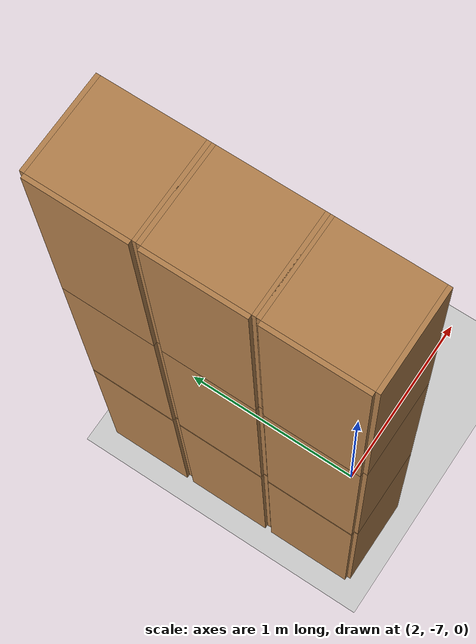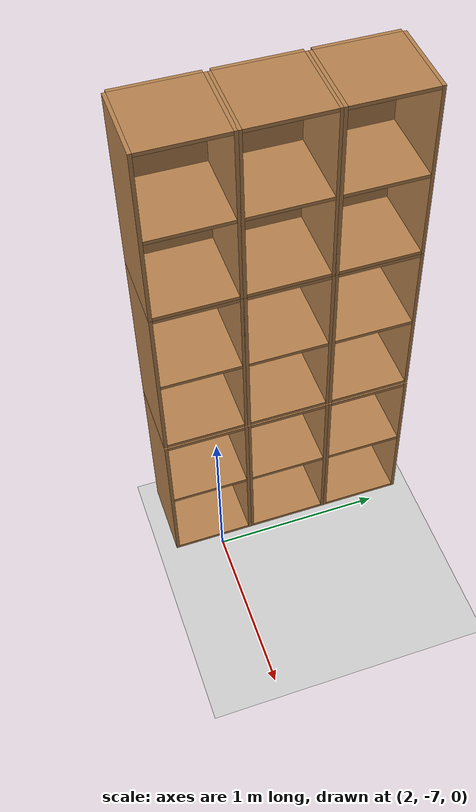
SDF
<sdf version="1.6">
 <world name="default">
  <model name="ground_plane">
   <static>1</static>
   <link name="link">
    <collision name="collision">
     <geometry><plane><normal>0 0 1</normal><size>100 100</size></plane></geometry>
     <surface>
      <contact><collide_bitmask>65535</collide_bitmask></contact>
      <friction><ode><mu>100</mu><mu2>50</mu2></ode></friction>
     </surface>
    </collision>
    <visual name="visual">
     <cast_shadows>0</cast_shadows>
     <geometry><plane><normal>0 0 1</normal><size>100 100</size></plane></geometry>
     <material>
      <script><uri>file://media/materials/scripts/gazebo.material</uri><name>Gazebo/Grey</name></script>
     </material>
    </visual>
   </link>
  </model>
  <model name="Locker18_clone_4_clone_2_clone_1_clone_clone_clone_3_clone_1">
   <model name="Locker18">
    <model name="Locker3">
     <model name="cabinet">
      <static>1</static>
      <link name="cabinet_bottom_plate">
       <inertial>
        <pose>0 0 -1 0 -0 0</pose>
        <inertia><ixx>2.05</ixx><ixy>0</ixy><ixz>0</ixz><iyy>2.05</iyy><iyz>0</iyz><izz>2.05</izz></inertia>
        <mass>25</mass>
       </inertial>
       <collision name="cabinet_bottom_plate_geom">
        <pose>0 0 0.01 0 -0 0</pose>
        <geometry><box><size>0.45 0.45 0.02</size></box></geometry>
       </collision>
       <visual name="cabinet_bottom_plate_geom_visual">
        <pose>0 0 0.01 0 -0 0</pose>
        <geometry><box><size>0.45 0.45 0.02</size></box></geometry>
        <material>
         <script><uri>file://media/materials/scripts/gazebo.material</uri><name>Gazebo/Wood</name></script>
        </material>
       </visual>
       <collision name="cabinet_bottom_plate_geom_cabinet_back_plate">
        <pose>0.235 0 0.51 0 -0 0</pose>
        <geometry><box><size>0.02 0.45 1.02</size></box></geometry>
       </collision>
       <visual name="cabinet_bottom_plate_geom_cabinet_back_plate_visual">
        <pose>0.235 0 0.51 0 -0 0</pose>
        <geometry><box><size>0.02 0.45 1.02</size></box></geometry>
        <material>
         <script><uri>file://media/materials/scripts/gazebo.material</uri><name>Gazebo/Wood</name></script>
        </material>
       </visual>
       <collision name="cabinet_bottom_plate_geom_cabinet_left_plate">
        <pose>0 0.235 0.51 0 -0 0</pose>
        <geometry><box><size>0.45 0.02 1.02</size></box></geometry>
       </collision>
       <visual name="cabinet_bottom_plate_geom_cabinet_left_plate_visual">
        <pose>0 0.235 0.51 0 -0 0</pose>
        <geometry><box><size>0.45 0.02 1.02</size></box></geometry>
        <material>
         <script><uri>file://media/materials/scripts/gazebo.material</uri><name>Gazebo/Wood</name></script>
        </material>
       </visual>
       <collision name="cabinet_bottom_plate_geom_cabinet_middle_plate">
        <pose>0 0 0.51 0 -0 0</pose>
        <geometry><box><size>0.45 0.45 0.02</size></box></geometry>
       </collision>
       <visual name="cabinet_bottom_plate_geom_cabinet_middle_plate_visual">
        <pose>0 0 0.51 0 -0 0</pose>
        <geometry><box><size>0.45 0.45 0.02</size></box></geometry>
        <material>
         <script><uri>file://media/materials/scripts/gazebo.material</uri><name>Gazebo/Wood</name></script>
        </material>
       </visual>
       <collision name="cabinet_bottom_plate_geom_cabinet_right_plate">
        <pose>0 -0.235 0.51 0 -0 0</pose>
        <geometry><box><size>0.45 0.02 1.02</size></box></geometry>
       </collision>
       <visual name="cabinet_bottom_plate_geom_cabinet_right_plate_visual">
        <pose>0 -0.235 0.51 0 -0 0</pose>
        <geometry><box><size>0.45 0.02 1.02</size></box></geometry>
        <material>
         <script><uri>file://media/materials/scripts/gazebo.material</uri><name>Gazebo/Wood</name></script>
        </material>
       </visual>
       <collision name="cabinet_bottom_plate_geom_cabinet_top_plate">
        <pose>0 0 1.01 0 -0 0</pose>
        <geometry><box><size>0.45 0.45 0.02</size></box></geometry>
       </collision>
       <visual name="cabinet_bottom_plate_geom_cabinet_top_plate_visual">
        <pose>0 0 1.01 0 -0 0</pose>
        <geometry><box><size>0.45 0.45 0.02</size></box></geometry>
        <material>
         <script><uri>file://media/materials/scripts/gazebo.material</uri><name>Gazebo/Wood</name></script>
        </material>
       </visual>
      </link>
      <pose>-0.676968 1.45758 0 0 -0 0</pose>
     </model>
     <model name="cabinet_clone">
      <static>1</static>
      <link name="cabinet_bottom_plate">
       <inertial>
        <pose>0 0 -1 0 -0 0</pose>
        <inertia><ixx>2.05</ixx><ixy>0</ixy><ixz>0</ixz><iyy>2.05</iyy><iyz>0</iyz><izz>2.05</izz></inertia>
        <mass>25</mass>
       </inertial>
       <collision name="cabinet_bottom_plate_geom">
        <pose>0 0 0.01 0 -0 0</pose>
        <geometry><box><size>0.45 0.45 0.02</size></box></geometry>
       </collision>
       <visual name="cabinet_bottom_plate_geom_visual">
        <pose>0 0 0.01 0 -0 0</pose>
        <geometry><box><size>0.45 0.45 0.02</size></box></geometry>
        <material>
         <script><uri>file://media/materials/scripts/gazebo.material</uri><name>Gazebo/Wood</name></script>
        </material>
       </visual>
       <collision name="cabinet_bottom_plate_geom_cabinet_back_plate">
        <pose>0.235 0 0.51 0 -0 0</pose>
        <geometry><box><size>0.02 0.45 1.02</size></box></geometry>
       </collision>
       <visual name="cabinet_bottom_plate_geom_cabinet_back_plate_visual">
        <pose>0.235 0 0.51 0 -0 0</pose>
        <geometry><box><size>0.02 0.45 1.02</size></box></geometry>
        <material>
         <script><uri>file://media/materials/scripts/gazebo.material</uri><name>Gazebo/Wood</name></script>
        </material>
       </visual>
       <collision name="cabinet_bottom_plate_geom_cabinet_left_plate">
        <pose>0 0.235 0.51 0 -0 0</pose>
        <geometry><box><size>0.45 0.02 1.02</size></box></geometry>
       </collision>
       <visual name="cabinet_bottom_plate_geom_cabinet_left_plate_visual">
        <pose>0 0.235 0.51 0 -0 0</pose>
        <geometry><box><size>0.45 0.02 1.02</size></box></geometry>
        <material>
         <script><uri>file://media/materials/scripts/gazebo.material</uri><name>Gazebo/Wood</name></script>
        </material>
       </visual>
       <collision name="cabinet_bottom_plate_geom_cabinet_middle_plate">
        <pose>0 0 0.51 0 -0 0</pose>
        <geometry><box><size>0.45 0.45 0.02</size></box></geometry>
       </collision>
       <visual name="cabinet_bottom_plate_geom_cabinet_middle_plate_visual">
        <pose>0 0 0.51 0 -0 0</pose>
        <geometry><box><size>0.45 0.45 0.02</size></box></geometry>
        <material>
         <script><uri>file://media/materials/scripts/gazebo.material</uri><name>Gazebo/Wood</name></script>
        </material>
       </visual>
       <collision name="cabinet_bottom_plate_geom_cabinet_right_plate">
        <pose>0 -0.235 0.51 0 -0 0</pose>
        <geometry><box><size>0.45 0.02 1.02</size></box></geometry>
       </collision>
       <visual name="cabinet_bottom_plate_geom_cabinet_right_plate_visual">
        <pose>0 -0.235 0.51 0 -0 0</pose>
        <geometry><box><size>0.45 0.02 1.02</size></box></geometry>
        <material>
         <script><uri>file://media/materials/scripts/gazebo.material</uri><name>Gazebo/Wood</name></script>
        </material>
       </visual>
       <collision name="cabinet_bottom_plate_geom_cabinet_top_plate">
        <pose>0 0 1.01 0 -0 0</pose>
        <geometry><box><size>0.45 0.45 0.02</size></box></geometry>
       </collision>
       <visual name="cabinet_bottom_plate_geom_cabinet_top_plate_visual">
        <pose>0 0 1.01 0 -0 0</pose>
        <geometry><box><size>0.45 0.45 0.02</size></box></geometry>
        <material>
         <script><uri>file://media/materials/scripts/gazebo.material</uri><name>Gazebo/Wood</name></script>
        </material>
       </visual>
      </link>
      <pose>-0.676968 0.970971 0 0 -0 0</pose>
     </model>
     <model name="cabinet_clone_0">
      <static>1</static>
      <link name="cabinet_bottom_plate">
       <inertial>
        <pose>0 0 -1 0 -0 0</pose>
        <inertia><ixx>2.05</ixx><ixy>0</ixy><ixz>0</ixz><iyy>2.05</iyy><iyz>0</iyz><izz>2.05</izz></inertia>
        <mass>25</mass>
       </inertial>
       <collision name="cabinet_bottom_plate_geom">
        <pose>0 0 0.01 0 -0 0</pose>
        <geometry><box><size>0.45 0.45 0.02</size></box></geometry>
       </collision>
       <visual name="cabinet_bottom_plate_geom_visual">
        <pose>0 0 0.01 0 -0 0</pose>
        <geometry><box><size>0.45 0.45 0.02</size></box></geometry>
        <material>
         <script><uri>file://media/materials/scripts/gazebo.material</uri><name>Gazebo/Wood</name></script>
        </material>
       </visual>
       <collision name="cabinet_bottom_plate_geom_cabinet_back_plate">
        <pose>0.235 0 0.51 0 -0 0</pose>
        <geometry><box><size>0.02 0.45 1.02</size></box></geometry>
       </collision>
       <visual name="cabinet_bottom_plate_geom_cabinet_back_plate_visual">
        <pose>0.235 0 0.51 0 -0 0</pose>
        <geometry><box><size>0.02 0.45 1.02</size></box></geometry>
        <material>
         <script><uri>file://media/materials/scripts/gazebo.material</uri><name>Gazebo/Wood</name></script>
        </material>
       </visual>
       <collision name="cabinet_bottom_plate_geom_cabinet_left_plate">
        <pose>0 0.235 0.51 0 -0 0</pose>
        <geometry><box><size>0.45 0.02 1.02</size></box></geometry>
       </collision>
       <visual name="cabinet_bottom_plate_geom_cabinet_left_plate_visual">
        <pose>0 0.235 0.51 0 -0 0</pose>
        <geometry><box><size>0.45 0.02 1.02</size></box></geometry>
        <material>
         <script><uri>file://media/materials/scripts/gazebo.material</uri><name>Gazebo/Wood</name></script>
        </material>
       </visual>
       <collision name="cabinet_bottom_plate_geom_cabinet_middle_plate">
        <pose>0 0 0.51 0 -0 0</pose>
        <geometry><box><size>0.45 0.45 0.02</size></box></geometry>
       </collision>
       <visual name="cabinet_bottom_plate_geom_cabinet_middle_plate_visual">
        <pose>0 0 0.51 0 -0 0</pose>
        <geometry><box><size>0.45 0.45 0.02</size></box></geometry>
        <material>
         <script><uri>file://media/materials/scripts/gazebo.material</uri><name>Gazebo/Wood</name></script>
        </material>
       </visual>
       <collision name="cabinet_bottom_plate_geom_cabinet_right_plate">
        <pose>0 -0.235 0.51 0 -0 0</pose>
        <geometry><box><size>0.45 0.02 1.02</size></box></geometry>
       </collision>
       <visual name="cabinet_bottom_plate_geom_cabinet_right_plate_visual">
        <pose>0 -0.235 0.51 0 -0 0</pose>
        <geometry><box><size>0.45 0.02 1.02</size></box></geometry>
        <material>
         <script><uri>file://media/materials/scripts/gazebo.material</uri><name>Gazebo/Wood</name></script>
        </material>
       </visual>
       <collision name="cabinet_bottom_plate_geom_cabinet_top_plate">
        <pose>0 0 1.01 0 -0 0</pose>
        <geometry><box><size>0.45 0.45 0.02</size></box></geometry>
       </collision>
       <visual name="cabinet_bottom_plate_geom_cabinet_top_plate_visual">
        <pose>0 0 1.01 0 -0 0</pose>
        <geometry><box><size>0.45 0.45 0.02</size></box></geometry>
        <material>
         <script><uri>file://media/materials/scripts/gazebo.material</uri><name>Gazebo/Wood</name></script>
        </material>
       </visual>
      </link>
      <pose>-0.676968 0.48391 0 0 -0 0</pose>
     </model>
     <static>0</static>
     <pose>0 3e-06 -1.02763 0 -0 0</pose>
    </model>
    <model name="Locker3_clone">
     <model name="cabinet">
      <static>1</static>
      <link name="cabinet_bottom_plate">
       <inertial>
        <pose>0 0 -1 0 -0 0</pose>
        <inertia><ixx>2.05</ixx><ixy>0</ixy><ixz>0</ixz><iyy>2.05</iyy><iyz>0</iyz><izz>2.05</izz></inertia>
        <mass>25</mass>
       </inertial>
       <collision name="cabinet_bottom_plate_geom">
        <pose>0 0 0.01 0 -0 0</pose>
        <geometry><box><size>0.45 0.45 0.02</size></box></geometry>
       </collision>
       <visual name="cabinet_bottom_plate_geom_visual">
        <pose>0 0 0.01 0 -0 0</pose>
        <geometry><box><size>0.45 0.45 0.02</size></box></geometry>
        <material>
         <script><uri>file://media/materials/scripts/gazebo.material</uri><name>Gazebo/Wood</name></script>
        </material>
       </visual>
       <collision name="cabinet_bottom_plate_geom_cabinet_back_plate">
        <pose>0.235 0 0.51 0 -0 0</pose>
        <geometry><box><size>0.02 0.45 1.02</size></box></geometry>
       </collision>
       <visual name="cabinet_bottom_plate_geom_cabinet_back_plate_visual">
        <pose>0.235 0 0.51 0 -0 0</pose>
        <geometry><box><size>0.02 0.45 1.02</size></box></geometry>
        <material>
         <script><uri>file://media/materials/scripts/gazebo.material</uri><name>Gazebo/Wood</name></script>
        </material>
       </visual>
       <collision name="cabinet_bottom_plate_geom_cabinet_left_plate">
        <pose>0 0.235 0.51 0 -0 0</pose>
        <geometry><box><size>0.45 0.02 1.02</size></box></geometry>
       </collision>
       <visual name="cabinet_bottom_plate_geom_cabinet_left_plate_visual">
        <pose>0 0.235 0.51 0 -0 0</pose>
        <geometry><box><size>0.45 0.02 1.02</size></box></geometry>
        <material>
         <script><uri>file://media/materials/scripts/gazebo.material</uri><name>Gazebo/Wood</name></script>
        </material>
       </visual>
       <collision name="cabinet_bottom_plate_geom_cabinet_middle_plate">
        <pose>0 0 0.51 0 -0 0</pose>
        <geometry><box><size>0.45 0.45 0.02</size></box></geometry>
       </collision>
       <visual name="cabinet_bottom_plate_geom_cabinet_middle_plate_visual">
        <pose>0 0 0.51 0 -0 0</pose>
        <geometry><box><size>0.45 0.45 0.02</size></box></geometry>
        <material>
         <script><uri>file://media/materials/scripts/gazebo.material</uri><name>Gazebo/Wood</name></script>
        </material>
       </visual>
       <collision name="cabinet_bottom_plate_geom_cabinet_right_plate">
        <pose>0 -0.235 0.51 0 -0 0</pose>
        <geometry><box><size>0.45 0.02 1.02</size></box></geometry>
       </collision>
       <visual name="cabinet_bottom_plate_geom_cabinet_right_plate_visual">
        <pose>0 -0.235 0.51 0 -0 0</pose>
        <geometry><box><size>0.45 0.02 1.02</size></box></geometry>
        <material>
         <script><uri>file://media/materials/scripts/gazebo.material</uri><name>Gazebo/Wood</name></script>
        </material>
       </visual>
       <collision name="cabinet_bottom_plate_geom_cabinet_top_plate">
        <pose>0 0 1.01 0 -0 0</pose>
        <geometry><box><size>0.45 0.45 0.02</size></box></geometry>
       </collision>
       <visual name="cabinet_bottom_plate_geom_cabinet_top_plate_visual">
        <pose>0 0 1.01 0 -0 0</pose>
        <geometry><box><size>0.45 0.45 0.02</size></box></geometry>
        <material>
         <script><uri>file://media/materials/scripts/gazebo.material</uri><name>Gazebo/Wood</name></script>
        </material>
       </visual>
      </link>
      <pose>-0.676968 1.45758 0 0 -0 0</pose>
     </model>
     <model name="cabinet_clone">
      <static>1</static>
      <link name="cabinet_bottom_plate">
       <inertial>
        <pose>0 0 -1 0 -0 0</pose>
        <inertia><ixx>2.05</ixx><ixy>0</ixy><ixz>0</ixz><iyy>2.05</iyy><iyz>0</iyz><izz>2.05</izz></inertia>
        <mass>25</mass>
       </inertial>
       <collision name="cabinet_bottom_plate_geom">
        <pose>0 0 0.01 0 -0 0</pose>
        <geometry><box><size>0.45 0.45 0.02</size></box></geometry>
       </collision>
       <visual name="cabinet_bottom_plate_geom_visual">
        <pose>0 0 0.01 0 -0 0</pose>
        <geometry><box><size>0.45 0.45 0.02</size></box></geometry>
        <material>
         <script><uri>file://media/materials/scripts/gazebo.material</uri><name>Gazebo/Wood</name></script>
        </material>
       </visual>
       <collision name="cabinet_bottom_plate_geom_cabinet_back_plate">
        <pose>0.235 0 0.51 0 -0 0</pose>
        <geometry><box><size>0.02 0.45 1.02</size></box></geometry>
       </collision>
       <visual name="cabinet_bottom_plate_geom_cabinet_back_plate_visual">
        <pose>0.235 0 0.51 0 -0 0</pose>
        <geometry><box><size>0.02 0.45 1.02</size></box></geometry>
        <material>
         <script><uri>file://media/materials/scripts/gazebo.material</uri><name>Gazebo/Wood</name></script>
        </material>
       </visual>
       <collision name="cabinet_bottom_plate_geom_cabinet_left_plate">
        <pose>0 0.235 0.51 0 -0 0</pose>
        <geometry><box><size>0.45 0.02 1.02</size></box></geometry>
       </collision>
       <visual name="cabinet_bottom_plate_geom_cabinet_left_plate_visual">
        <pose>0 0.235 0.51 0 -0 0</pose>
        <geometry><box><size>0.45 0.02 1.02</size></box></geometry>
        <material>
         <script><uri>file://media/materials/scripts/gazebo.material</uri><name>Gazebo/Wood</name></script>
        </material>
       </visual>
       <collision name="cabinet_bottom_plate_geom_cabinet_middle_plate">
        <pose>0 0 0.51 0 -0 0</pose>
        <geometry><box><size>0.45 0.45 0.02</size></box></geometry>
       </collision>
       <visual name="cabinet_bottom_plate_geom_cabinet_middle_plate_visual">
        <pose>0 0 0.51 0 -0 0</pose>
        <geometry><box><size>0.45 0.45 0.02</size></box></geometry>
        <material>
         <script><uri>file://media/materials/scripts/gazebo.material</uri><name>Gazebo/Wood</name></script>
        </material>
       </visual>
       <collision name="cabinet_bottom_plate_geom_cabinet_right_plate">
        <pose>0 -0.235 0.51 0 -0 0</pose>
        <geometry><box><size>0.45 0.02 1.02</size></box></geometry>
       </collision>
       <visual name="cabinet_bottom_plate_geom_cabinet_right_plate_visual">
        <pose>0 -0.235 0.51 0 -0 0</pose>
        <geometry><box><size>0.45 0.02 1.02</size></box></geometry>
        <material>
         <script><uri>file://media/materials/scripts/gazebo.material</uri><name>Gazebo/Wood</name></script>
        </material>
       </visual>
       <collision name="cabinet_bottom_plate_geom_cabinet_top_plate">
        <pose>0 0 1.01 0 -0 0</pose>
        <geometry><box><size>0.45 0.45 0.02</size></box></geometry>
       </collision>
       <visual name="cabinet_bottom_plate_geom_cabinet_top_plate_visual">
        <pose>0 0 1.01 0 -0 0</pose>
        <geometry><box><size>0.45 0.45 0.02</size></box></geometry>
        <material>
         <script><uri>file://media/materials/scripts/gazebo.material</uri><name>Gazebo/Wood</name></script>
        </material>
       </visual>
      </link>
      <pose>-0.676968 0.970971 0 0 -0 0</pose>
     </model>
     <model name="cabinet_clone_0">
      <static>1</static>
      <link name="cabinet_bottom_plate">
       <inertial>
        <pose>0 0 -1 0 -0 0</pose>
        <inertia><ixx>2.05</ixx><ixy>0</ixy><ixz>0</ixz><iyy>2.05</iyy><iyz>0</iyz><izz>2.05</izz></inertia>
        <mass>25</mass>
       </inertial>
       <collision name="cabinet_bottom_plate_geom">
        <pose>0 0 0.01 0 -0 0</pose>
        <geometry><box><size>0.45 0.45 0.02</size></box></geometry>
       </collision>
       <visual name="cabinet_bottom_plate_geom_visual">
        <pose>0 0 0.01 0 -0 0</pose>
        <geometry><box><size>0.45 0.45 0.02</size></box></geometry>
        <material>
         <script><uri>file://media/materials/scripts/gazebo.material</uri><name>Gazebo/Wood</name></script>
        </material>
       </visual>
       <collision name="cabinet_bottom_plate_geom_cabinet_back_plate">
        <pose>0.235 0 0.51 0 -0 0</pose>
        <geometry><box><size>0.02 0.45 1.02</size></box></geometry>
       </collision>
       <visual name="cabinet_bottom_plate_geom_cabinet_back_plate_visual">
        <pose>0.235 0 0.51 0 -0 0</pose>
        <geometry><box><size>0.02 0.45 1.02</size></box></geometry>
        <material>
         <script><uri>file://media/materials/scripts/gazebo.material</uri><name>Gazebo/Wood</name></script>
        </material>
       </visual>
       <collision name="cabinet_bottom_plate_geom_cabinet_left_plate">
        <pose>0 0.235 0.51 0 -0 0</pose>
        <geometry><box><size>0.45 0.02 1.02</size></box></geometry>
       </collision>
       <visual name="cabinet_bottom_plate_geom_cabinet_left_plate_visual">
        <pose>0 0.235 0.51 0 -0 0</pose>
        <geometry><box><size>0.45 0.02 1.02</size></box></geometry>
        <material>
         <script><uri>file://media/materials/scripts/gazebo.material</uri><name>Gazebo/Wood</name></script>
        </material>
       </visual>
       <collision name="cabinet_bottom_plate_geom_cabinet_middle_plate">
        <pose>0 0 0.51 0 -0 0</pose>
        <geometry><box><size>0.45 0.45 0.02</size></box></geometry>
       </collision>
       <visual name="cabinet_bottom_plate_geom_cabinet_middle_plate_visual">
        <pose>0 0 0.51 0 -0 0</pose>
        <geometry><box><size>0.45 0.45 0.02</size></box></geometry>
        <material>
         <script><uri>file://media/materials/scripts/gazebo.material</uri><name>Gazebo/Wood</name></script>
        </material>
       </visual>
       <collision name="cabinet_bottom_plate_geom_cabinet_right_plate">
        <pose>0 -0.235 0.51 0 -0 0</pose>
        <geometry><box><size>0.45 0.02 1.02</size></box></geometry>
       </collision>
       <visual name="cabinet_bottom_plate_geom_cabinet_right_plate_visual">
        <pose>0 -0.235 0.51 0 -0 0</pose>
        <geometry><box><size>0.45 0.02 1.02</size></box></geometry>
        <material>
         <script><uri>file://media/materials/scripts/gazebo.material</uri><name>Gazebo/Wood</name></script>
        </material>
       </visual>
       <collision name="cabinet_bottom_plate_geom_cabinet_top_plate">
        <pose>0 0 1.01 0 -0 0</pose>
        <geometry><box><size>0.45 0.45 0.02</size></box></geometry>
       </collision>
       <visual name="cabinet_bottom_plate_geom_cabinet_top_plate_visual">
        <pose>0 0 1.01 0 -0 0</pose>
        <geometry><box><size>0.45 0.45 0.02</size></box></geometry>
        <material>
         <script><uri>file://media/materials/scripts/gazebo.material</uri><name>Gazebo/Wood</name></script>
        </material>
       </visual>
      </link>
      <pose>-0.676968 0.48391 0 0 -0 0</pose>
     </model>
     <static>0</static>
     <pose>0 3e-06 0.003717 0 -0 0</pose>
    </model>
    <model name="Locker3_clone_clone">
     <model name="cabinet">
      <static>1</static>
      <link name="cabinet_bottom_plate">
       <inertial>
        <pose>0 0 -1 0 -0 0</pose>
        <inertia><ixx>2.05</ixx><ixy>0</ixy><ixz>0</ixz><iyy>2.05</iyy><iyz>0</iyz><izz>2.05</izz></inertia>
        <mass>25</mass>
       </inertial>
       <collision name="cabinet_bottom_plate_geom">
        <pose>0 0 0.01 0 -0 0</pose>
        <geometry><box><size>0.45 0.45 0.02</size></box></geometry>
       </collision>
       <visual name="cabinet_bottom_plate_geom_visual">
        <pose>0 0 0.01 0 -0 0</pose>
        <geometry><box><size>0.45 0.45 0.02</size></box></geometry>
        <material>
         <script><uri>file://media/materials/scripts/gazebo.material</uri><name>Gazebo/Wood</name></script>
        </material>
       </visual>
       <collision name="cabinet_bottom_plate_geom_cabinet_back_plate">
        <pose>0.235 0 0.51 0 -0 0</pose>
        <geometry><box><size>0.02 0.45 1.02</size></box></geometry>
       </collision>
       <visual name="cabinet_bottom_plate_geom_cabinet_back_plate_visual">
        <pose>0.235 0 0.51 0 -0 0</pose>
        <geometry><box><size>0.02 0.45 1.02</size></box></geometry>
        <material>
         <script><uri>file://media/materials/scripts/gazebo.material</uri><name>Gazebo/Wood</name></script>
        </material>
       </visual>
       <collision name="cabinet_bottom_plate_geom_cabinet_left_plate">
        <pose>0 0.235 0.51 0 -0 0</pose>
        <geometry><box><size>0.45 0.02 1.02</size></box></geometry>
       </collision>
       <visual name="cabinet_bottom_plate_geom_cabinet_left_plate_visual">
        <pose>0 0.235 0.51 0 -0 0</pose>
        <geometry><box><size>0.45 0.02 1.02</size></box></geometry>
        <material>
         <script><uri>file://media/materials/scripts/gazebo.material</uri><name>Gazebo/Wood</name></script>
        </material>
       </visual>
       <collision name="cabinet_bottom_plate_geom_cabinet_middle_plate">
        <pose>0 0 0.51 0 -0 0</pose>
        <geometry><box><size>0.45 0.45 0.02</size></box></geometry>
       </collision>
       <visual name="cabinet_bottom_plate_geom_cabinet_middle_plate_visual">
        <pose>0 0 0.51 0 -0 0</pose>
        <geometry><box><size>0.45 0.45 0.02</size></box></geometry>
        <material>
         <script><uri>file://media/materials/scripts/gazebo.material</uri><name>Gazebo/Wood</name></script>
        </material>
       </visual>
       <collision name="cabinet_bottom_plate_geom_cabinet_right_plate">
        <pose>0 -0.235 0.51 0 -0 0</pose>
        <geometry><box><size>0.45 0.02 1.02</size></box></geometry>
       </collision>
       <visual name="cabinet_bottom_plate_geom_cabinet_right_plate_visual">
        <pose>0 -0.235 0.51 0 -0 0</pose>
        <geometry><box><size>0.45 0.02 1.02</size></box></geometry>
        <material>
         <script><uri>file://media/materials/scripts/gazebo.material</uri><name>Gazebo/Wood</name></script>
        </material>
       </visual>
       <collision name="cabinet_bottom_plate_geom_cabinet_top_plate">
        <pose>0 0 1.01 0 -0 0</pose>
        <geometry><box><size>0.45 0.45 0.02</size></box></geometry>
       </collision>
       <visual name="cabinet_bottom_plate_geom_cabinet_top_plate_visual">
        <pose>0 0 1.01 0 -0 0</pose>
        <geometry><box><size>0.45 0.45 0.02</size></box></geometry>
        <material>
         <script><uri>file://media/materials/scripts/gazebo.material</uri><name>Gazebo/Wood</name></script>
        </material>
       </visual>
      </link>
      <pose>-0.676968 1.45758 0 0 -0 0</pose>
     </model>
     <model name="cabinet_clone">
      <static>1</static>
      <link name="cabinet_bottom_plate">
       <inertial>
        <pose>0 0 -1 0 -0 0</pose>
        <inertia><ixx>2.05</ixx><ixy>0</ixy><ixz>0</ixz><iyy>2.05</iyy><iyz>0</iyz><izz>2.05</izz></inertia>
        <mass>25</mass>
       </inertial>
       <collision name="cabinet_bottom_plate_geom">
        <pose>0 0 0.01 0 -0 0</pose>
        <geometry><box><size>0.45 0.45 0.02</size></box></geometry>
       </collision>
       <visual name="cabinet_bottom_plate_geom_visual">
        <pose>0 0 0.01 0 -0 0</pose>
        <geometry><box><size>0.45 0.45 0.02</size></box></geometry>
        <material>
         <script><uri>file://media/materials/scripts/gazebo.material</uri><name>Gazebo/Wood</name></script>
        </material>
       </visual>
       <collision name="cabinet_bottom_plate_geom_cabinet_back_plate">
        <pose>0.235 0 0.51 0 -0 0</pose>
        <geometry><box><size>0.02 0.45 1.02</size></box></geometry>
       </collision>
       <visual name="cabinet_bottom_plate_geom_cabinet_back_plate_visual">
        <pose>0.235 0 0.51 0 -0 0</pose>
        <geometry><box><size>0.02 0.45 1.02</size></box></geometry>
        <material>
         <script><uri>file://media/materials/scripts/gazebo.material</uri><name>Gazebo/Wood</name></script>
        </material>
       </visual>
       <collision name="cabinet_bottom_plate_geom_cabinet_left_plate">
        <pose>0 0.235 0.51 0 -0 0</pose>
        <geometry><box><size>0.45 0.02 1.02</size></box></geometry>
       </collision>
       <visual name="cabinet_bottom_plate_geom_cabinet_left_plate_visual">
        <pose>0 0.235 0.51 0 -0 0</pose>
        <geometry><box><size>0.45 0.02 1.02</size></box></geometry>
        <material>
         <script><uri>file://media/materials/scripts/gazebo.material</uri><name>Gazebo/Wood</name></script>
        </material>
       </visual>
       <collision name="cabinet_bottom_plate_geom_cabinet_middle_plate">
        <pose>0 0 0.51 0 -0 0</pose>
        <geometry><box><size>0.45 0.45 0.02</size></box></geometry>
       </collision>
       <visual name="cabinet_bottom_plate_geom_cabinet_middle_plate_visual">
        <pose>0 0 0.51 0 -0 0</pose>
        <geometry><box><size>0.45 0.45 0.02</size></box></geometry>
        <material>
         <script><uri>file://media/materials/scripts/gazebo.material</uri><name>Gazebo/Wood</name></script>
        </material>
       </visual>
       <collision name="cabinet_bottom_plate_geom_cabinet_right_plate">
        <pose>0 -0.235 0.51 0 -0 0</pose>
        <geometry><box><size>0.45 0.02 1.02</size></box></geometry>
       </collision>
       <visual name="cabinet_bottom_plate_geom_cabinet_right_plate_visual">
        <pose>0 -0.235 0.51 0 -0 0</pose>
        <geometry><box><size>0.45 0.02 1.02</size></box></geometry>
        <material>
         <script><uri>file://media/materials/scripts/gazebo.material</uri><name>Gazebo/Wood</name></script>
        </material>
       </visual>
       <collision name="cabinet_bottom_plate_geom_cabinet_top_plate">
        <pose>0 0 1.01 0 -0 0</pose>
        <geometry><box><size>0.45 0.45 0.02</size></box></geometry>
       </collision>
       <visual name="cabinet_bottom_plate_geom_cabinet_top_plate_visual">
        <pose>0 0 1.01 0 -0 0</pose>
        <geometry><box><size>0.45 0.45 0.02</size></box></geometry>
        <material>
         <script><uri>file://media/materials/scripts/gazebo.material</uri><name>Gazebo/Wood</name></script>
        </material>
       </visual>
      </link>
      <pose>-0.676968 0.970971 0 0 -0 0</pose>
     </model>
     <model name="cabinet_clone_0">
      <static>1</static>
      <link name="cabinet_bottom_plate">
       <inertial>
        <pose>0 0 -1 0 -0 0</pose>
        <inertia><ixx>2.05</ixx><ixy>0</ixy><ixz>0</ixz><iyy>2.05</iyy><iyz>0</iyz><izz>2.05</izz></inertia>
        <mass>25</mass>
       </inertial>
       <collision name="cabinet_bottom_plate_geom">
        <pose>0 0 0.01 0 -0 0</pose>
        <geometry><box><size>0.45 0.45 0.02</size></box></geometry>
       </collision>
       <visual name="cabinet_bottom_plate_geom_visual">
        <pose>0 0 0.01 0 -0 0</pose>
        <geometry><box><size>0.45 0.45 0.02</size></box></geometry>
        <material>
         <script><uri>file://media/materials/scripts/gazebo.material</uri><name>Gazebo/Wood</name></script>
        </material>
       </visual>
       <collision name="cabinet_bottom_plate_geom_cabinet_back_plate">
        <pose>0.235 0 0.51 0 -0 0</pose>
        <geometry><box><size>0.02 0.45 1.02</size></box></geometry>
       </collision>
       <visual name="cabinet_bottom_plate_geom_cabinet_back_plate_visual">
        <pose>0.235 0 0.51 0 -0 0</pose>
        <geometry><box><size>0.02 0.45 1.02</size></box></geometry>
        <material>
         <script><uri>file://media/materials/scripts/gazebo.material</uri><name>Gazebo/Wood</name></script>
        </material>
       </visual>
       <collision name="cabinet_bottom_plate_geom_cabinet_left_plate">
        <pose>0 0.235 0.51 0 -0 0</pose>
        <geometry><box><size>0.45 0.02 1.02</size></box></geometry>
       </collision>
       <visual name="cabinet_bottom_plate_geom_cabinet_left_plate_visual">
        <pose>0 0.235 0.51 0 -0 0</pose>
        <geometry><box><size>0.45 0.02 1.02</size></box></geometry>
        <material>
         <script><uri>file://media/materials/scripts/gazebo.material</uri><name>Gazebo/Wood</name></script>
        </material>
       </visual>
       <collision name="cabinet_bottom_plate_geom_cabinet_middle_plate">
        <pose>0 0 0.51 0 -0 0</pose>
        <geometry><box><size>0.45 0.45 0.02</size></box></geometry>
       </collision>
       <visual name="cabinet_bottom_plate_geom_cabinet_middle_plate_visual">
        <pose>0 0 0.51 0 -0 0</pose>
        <geometry><box><size>0.45 0.45 0.02</size></box></geometry>
        <material>
         <script><uri>file://media/materials/scripts/gazebo.material</uri><name>Gazebo/Wood</name></script>
        </material>
       </visual>
       <collision name="cabinet_bottom_plate_geom_cabinet_right_plate">
        <pose>0 -0.235 0.51 0 -0 0</pose>
        <geometry><box><size>0.45 0.02 1.02</size></box></geometry>
       </collision>
       <visual name="cabinet_bottom_plate_geom_cabinet_right_plate_visual">
        <pose>0 -0.235 0.51 0 -0 0</pose>
        <geometry><box><size>0.45 0.02 1.02</size></box></geometry>
        <material>
         <script><uri>file://media/materials/scripts/gazebo.material</uri><name>Gazebo/Wood</name></script>
        </material>
       </visual>
       <collision name="cabinet_bottom_plate_geom_cabinet_top_plate">
        <pose>0 0 1.01 0 -0 0</pose>
        <geometry><box><size>0.45 0.45 0.02</size></box></geometry>
       </collision>
       <visual name="cabinet_bottom_plate_geom_cabinet_top_plate_visual">
        <pose>0 0 1.01 0 -0 0</pose>
        <geometry><box><size>0.45 0.45 0.02</size></box></geometry>
        <material>
         <script><uri>file://media/materials/scripts/gazebo.material</uri><name>Gazebo/Wood</name></script>
        </material>
       </visual>
      </link>
      <pose>-0.676968 0.48391 0 0 -0 0</pose>
     </model>
     <static>0</static>
     <pose>0 3e-06 1.02391 0 -0 0</pose>
    </model>
    <static>0</static>
    <pose>-0 4e-06 4e-06 0 -0 0</pose>
   </model>
   <static>0</static>
   <pose>1.08178 -5.59013 1.08672 0 -0 3.14119</pose>
  </model>
 </world>
</sdf>
